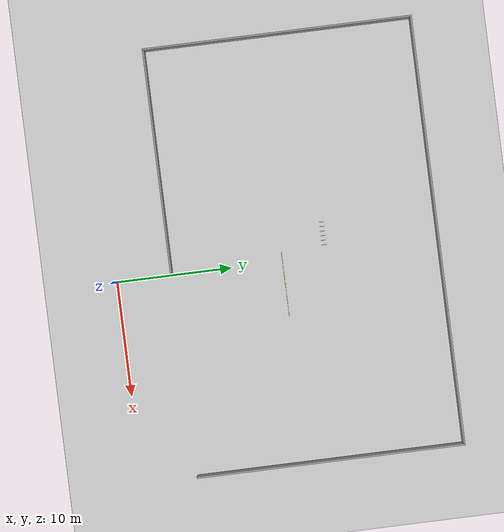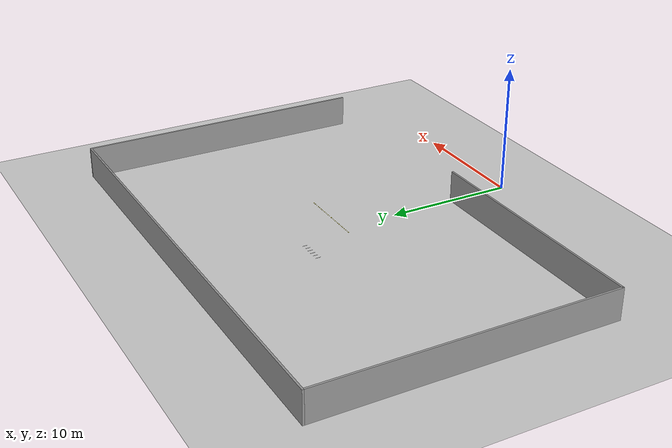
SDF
<sdf version="1.6">
 <world name="default">
  <model name="ground_plane">
   <static>1</static>
   <link name="link">
    <collision name="collision">
     <geometry><plane><normal>0 0 1</normal><size>100 100</size></plane></geometry>
     <surface><friction><ode><mu>100</mu><mu2>50</mu2></ode></friction></surface>
    </collision>
    <visual name="visual">
     <cast_shadows>0</cast_shadows>
     <geometry><plane><normal>0 0 1</normal><size>100 100</size></plane></geometry>
     <material>
      <script><uri>file://media/materials/scripts/gazebo.material</uri><name>Gazebo/Grey</name></script>
     </material>
    </visual>
   </link>
  </model>
  <model name="dashedLine560cm_9">
   <link name="link_1">
    <inertial>
     <mass>1</mass>
     <inertia>
      <ixx>0.166667</ixx>
      <ixy>0</ixy>
      <ixz>0</ixz>
      <iyy>0.166667</iyy>
      <iyz>0</iyz>
      <izz>0.166667</izz>
     </inertia>
    </inertial>
    <visual name="visual">
     <pose>2.75 0 0 0 -0 0</pose>
     <geometry><box><size>0.1 0.05 0.001</size></box></geometry>
     <material>
      <lighting>1</lighting>
      <script><uri>file://media/materials/scripts/gazebo.material</uri><name>Gazebo/Yellow</name></script>
     </material>
    </visual>
    <visual name="ModelPreview_2::link_1::visual_1">
     <pose>2.6 0 0 0 -0 0</pose>
     <geometry><box><size>0.1 0.05 0.001</size></box></geometry>
     <material>
      <lighting>1</lighting>
      <script><uri>file://media/materials/scripts/gazebo.material</uri><name>Gazebo/Yellow</name></script>
     </material>
    </visual>
    <visual name="ModelPreview_2::link_1::visual_2">
     <pose>2.45 0 0 0 -0 0</pose>
     <geometry><box><size>0.1 0.05 0.001</size></box></geometry>
     <material>
      <lighting>1</lighting>
      <script><uri>file://media/materials/scripts/gazebo.material</uri><name>Gazebo/Yellow</name></script>
     </material>
    </visual>
    <visual name="ModelPreview_2::link_1::visual_3">
     <pose>2.25 0 0 0 -0 0</pose>
     <geometry><box><size>0.1 0.05 0.001</size></box></geometry>
     <material>
      <lighting>1</lighting>
      <script><uri>file://media/materials/scripts/gazebo.material</uri><name>Gazebo/Yellow</name></script>
     </material>
    </visual>
    <visual name="ModelPreview_2::link_1::visual_4">
     <pose>2.05 0 0 0 -0 0</pose>
     <geometry><box><size>0.1 0.05 0.001</size></box></geometry>
     <material>
      <lighting>1</lighting>
      <script><uri>file://media/materials/scripts/gazebo.material</uri><name>Gazebo/Yellow</name></script>
     </material>
    </visual>
    <visual name="ModelPreview_2::link_1::visual_5">
     <pose>1.85 0 0 0 -0 0</pose>
     <geometry><box><size>0.1 0.05 0.001</size></box></geometry>
     <material>
      <lighting>1</lighting>
      <script><uri>file://media/materials/scripts/gazebo.material</uri><name>Gazebo/Yellow</name></script>
     </material>
    </visual>
    <visual name="ModelPreview_2::link_1::visual_6">
     <pose>1.65 0 0 0 -0 0</pose>
     <geometry><box><size>0.1 0.05 0.001</size></box></geometry>
     <material>
      <lighting>1</lighting>
      <script><uri>file://media/materials/scripts/gazebo.material</uri><name>Gazebo/Yellow</name></script>
     </material>
    </visual>
    <visual name="ModelPreview_2::link_1::visual_7">
     <pose>1.45 0 0 0 -0 0</pose>
     <geometry><box><size>0.1 0.05 0.001</size></box></geometry>
     <material>
      <lighting>1</lighting>
      <script><uri>file://media/materials/scripts/gazebo.material</uri><name>Gazebo/Yellow</name></script>
     </material>
    </visual>
    <visual name="ModelPreview_2::link_1::visual_8">
     <pose>1.25 0 0 0 -0 0</pose>
     <geometry><box><size>0.1 0.05 0.001</size></box></geometry>
     <material>
      <lighting>1</lighting>
      <script><uri>file://media/materials/scripts/gazebo.material</uri><name>Gazebo/Yellow</name></script>
     </material>
    </visual>
    <visual name="ModelPreview_2::link_1::visual_9">
     <pose>1.05 0 0 0 -0 0</pose>
     <geometry><box><size>0.1 0.05 0.001</size></box></geometry>
     <material>
      <lighting>1</lighting>
      <script><uri>file://media/materials/scripts/gazebo.material</uri><name>Gazebo/Yellow</name></script>
     </material>
    </visual>
    <visual name="ModelPreview_2::link_1::visual_10">
     <pose>0.85 0 0 0 -0 0</pose>
     <geometry><box><size>0.1 0.05 0.001</size></box></geometry>
     <material>
      <lighting>1</lighting>
      <script><uri>file://media/materials/scripts/gazebo.material</uri><name>Gazebo/Yellow</name></script>
     </material>
    </visual>
    <visual name="ModelPreview_2::link_1::visual_11">
     <pose>0.65 0 0 0 -0 0</pose>
     <geometry><box><size>0.1 0.05 0.001</size></box></geometry>
     <material>
      <lighting>1</lighting>
      <script><uri>file://media/materials/scripts/gazebo.material</uri><name>Gazebo/Yellow</name></script>
     </material>
    </visual>
    <visual name="ModelPreview_2::link_1::visual_12">
     <pose>0.45 0 0 0 -0 0</pose>
     <geometry><box><size>0.1 0.05 0.001</size></box></geometry>
     <material>
      <lighting>1</lighting>
      <script><uri>file://media/materials/scripts/gazebo.material</uri><name>Gazebo/Yellow</name></script>
     </material>
    </visual>
    <visual name="ModelPreview_2::link_1::visual_13">
     <pose>0.25 0 0 0 -0 0</pose>
     <geometry><box><size>0.1 0.05 0.001</size></box></geometry>
     <material>
      <lighting>1</lighting>
      <script><uri>file://media/materials/scripts/gazebo.material</uri><name>Gazebo/Yellow</name></script>
     </material>
    </visual>
    <visual name="ModelPreview_2::link_1::visual_14">
     <pose>-0.05 0 0 0 -0 0</pose>
     <geometry><box><size>0.1 0.05 0.001</size></box></geometry>
     <material>
      <lighting>1</lighting>
      <script><uri>file://media/materials/scripts/gazebo.material</uri><name>Gazebo/Yellow</name></script>
     </material>
    </visual>
    <visual name="ModelPreview_2::link_1::visual_15">
     <pose>-0.25 0 0 0 -0 0</pose>
     <geometry><box><size>0.1 0.05 0.001</size></box></geometry>
     <material>
      <lighting>1</lighting>
      <script><uri>file://media/materials/scripts/gazebo.material</uri><name>Gazebo/Yellow</name></script>
     </material>
    </visual>
    <visual name="ModelPreview_2::link_1::visual_16">
     <pose>-0.45 0 0 0 -0 0</pose>
     <geometry><box><size>0.1 0.05 0.001</size></box></geometry>
     <material>
      <lighting>1</lighting>
      <script><uri>file://media/materials/scripts/gazebo.material</uri><name>Gazebo/Yellow</name></script>
     </material>
    </visual>
    <visual name="ModelPreview_2::link_1::visual_17">
     <pose>-0.65 0 0 0 -0 0</pose>
     <geometry><box><size>0.1 0.05 0.001</size></box></geometry>
     <material>
      <lighting>1</lighting>
      <script><uri>file://media/materials/scripts/gazebo.material</uri><name>Gazebo/Yellow</name></script>
     </material>
    </visual>
    <visual name="ModelPreview_2::link_1::visual_18">
     <pose>-0.85 0 0 0 -0 0</pose>
     <geometry><box><size>0.1 0.05 0.001</size></box></geometry>
     <material>
      <lighting>1</lighting>
      <script><uri>file://media/materials/scripts/gazebo.material</uri><name>Gazebo/Yellow</name></script>
     </material>
    </visual>
    <visual name="ModelPreview_2::link_1::visual_19">
     <pose>-1.05 0 0 0 -0 0</pose>
     <geometry><box><size>0.1 0.05 0.001</size></box></geometry>
     <material>
      <lighting>1</lighting>
      <script><uri>file://media/materials/scripts/gazebo.material</uri><name>Gazebo/Yellow</name></script>
     </material>
    </visual>
    <visual name="ModelPreview_2::link_1::visual_20">
     <pose>-1.25 0 0 0 -0 0</pose>
     <geometry><box><size>0.1 0.05 0.001</size></box></geometry>
     <material>
      <lighting>1</lighting>
      <script><uri>file://media/materials/scripts/gazebo.material</uri><name>Gazebo/Yellow</name></script>
     </material>
    </visual>
    <visual name="ModelPreview_2::link_1::visual_21">
     <pose>-1.45 0 0 0 -0 0</pose>
     <geometry><box><size>0.1 0.05 0.001</size></box></geometry>
     <material>
      <lighting>1</lighting>
      <script><uri>file://media/materials/scripts/gazebo.material</uri><name>Gazebo/Yellow</name></script>
     </material>
    </visual>
    <visual name="ModelPreview_2::link_1::visual_22">
     <pose>-1.65 0 0 0 -0 0</pose>
     <geometry><box><size>0.1 0.05 0.001</size></box></geometry>
     <material>
      <lighting>1</lighting>
      <script><uri>file://media/materials/scripts/gazebo.material</uri><name>Gazebo/Yellow</name></script>
     </material>
    </visual>
    <visual name="ModelPreview_2::link_1::visual_23">
     <pose>-1.85 0 0 0 -0 0</pose>
     <geometry><box><size>0.1 0.05 0.001</size></box></geometry>
     <material>
      <lighting>1</lighting>
      <script><uri>file://media/materials/scripts/gazebo.material</uri><name>Gazebo/Yellow</name></script>
     </material>
    </visual>
    <visual name="ModelPreview_2::link_1::visual_24">
     <pose>-2.05 0 0 0 -0 0</pose>
     <geometry><box><size>0.1 0.05 0.001</size></box></geometry>
     <material>
      <lighting>1</lighting>
      <script><uri>file://media/materials/scripts/gazebo.material</uri><name>Gazebo/Yellow</name></script>
     </material>
    </visual>
    <visual name="ModelPreview_2::link_1::visual_25">
     <pose>-2.25 0 0 0 -0 0</pose>
     <geometry><box><size>0.1 0.05 0.001</size></box></geometry>
     <material>
      <lighting>1</lighting>
      <script><uri>file://media/materials/scripts/gazebo.material</uri><name>Gazebo/Yellow</name></script>
     </material>
    </visual>
    <visual name="ModelPreview_2::link_1::visual_26">
     <pose>-2.45 0 0 0 -0 0</pose>
     <geometry><box><size>0.1 0.05 0.001</size></box></geometry>
     <material>
      <lighting>1</lighting>
      <script><uri>file://media/materials/scripts/gazebo.material</uri><name>Gazebo/Yellow</name></script>
     </material>
    </visual>
    <visual name="ModelPreview_2::link_1::visual_27">
     <pose>-2.6 0 0 0 -0 0</pose>
     <geometry><box><size>0.1 0.05 0.001</size></box></geometry>
     <material>
      <lighting>1</lighting>
      <script><uri>file://media/materials/scripts/gazebo.material</uri><name>Gazebo/Yellow</name></script>
     </material>
    </visual>
    <visual name="ModelPreview_2::link_1::visual_28">
     <pose>-2.75 0 0 0 -0 0</pose>
     <geometry><box><size>0.1 0.05 0.001</size></box></geometry>
     <material>
      <lighting>1</lighting>
      <script><uri>file://media/materials/scripts/gazebo.material</uri><name>Gazebo/Yellow</name></script>
     </material>
    </visual>
    <visual name="ModelPreview_2::link_1::visual_29">
     <pose>0.05 0 0 0 -0 0</pose>
     <geometry><box><size>0.1 0.05 0.001</size></box></geometry>
     <material>
      <lighting>1</lighting>
      <script><uri>file://media/materials/scripts/gazebo.material</uri><name>Gazebo/Yellow</name></script>
     </material>
    </visual>
    <collision name="collision"><geometry><box><size>0.1 0.05 1e-05</size></box></geometry></collision>
   </link>
   <static>1</static>
   <pose>2 14.425 0 0 -0 0</pose>
  </model>
  <model name="zebra_crossing_40cmx200cm_4">
   <link name="link_2">
    <inertial>
     <mass>1</mass>
     <inertia>
      <ixx>0.166667</ixx>
      <ixy>0</ixy>
      <ixz>0</ixz>
      <iyy>0.166667</iyy>
      <iyz>0</iyz>
      <izz>0.166667</izz>
     </inertia>
    </inertial>
    <visual name="ModelPreview_5::link_2::visual_1">
     <pose>-0.2 0 0 0 -0 0</pose>
     <geometry><box><size>0.05 0.4 0.001</size></box></geometry>
     <material>
      <lighting>1</lighting>
      <script><uri>file://media/materials/scripts/gazebo.material</uri><name>Gazebo/White</name></script>
     </material>
    </visual>
    <visual name="ModelPreview_5::link_2::visual_3">
     <pose>-0.6 0 0 0 -0 0</pose>
     <geometry><box><size>0.05 0.4 0.001</size></box></geometry>
     <material>
      <lighting>1</lighting>
      <script><uri>file://media/materials/scripts/gazebo.material</uri><name>Gazebo/White</name></script>
     </material>
    </visual>
    <visual name="ModelPreview_5::link_2::visual_4">
     <pose>1 0 0 0 -0 0</pose>
     <geometry><box><size>0.05 0.4 0.001</size></box></geometry>
     <material>
      <lighting>1</lighting>
      <script><uri>file://media/materials/scripts/gazebo.material</uri><name>Gazebo/White</name></script>
     </material>
    </visual>
    <visual name="visual">
     <pose>0.2 0 0 0 -0 0</pose>
     <geometry><box><size>0.05 0.4 0.001</size></box></geometry>
     <material>
      <lighting>1</lighting>
      <script><uri>file://media/materials/scripts/gazebo.material</uri><name>Gazebo/White</name></script>
     </material>
    </visual>
    <visual name="ModelPreview_5::link_2::visual_5">
     <pose>-1 0 0 0 -0 0</pose>
     <geometry><box><size>0.05 0.4 0.001</size></box></geometry>
     <material>
      <lighting>1</lighting>
      <script><uri>file://media/materials/scripts/gazebo.material</uri><name>Gazebo/White</name></script>
     </material>
    </visual>
    <visual name="ModelPreview_5::link_2::visual_2">
     <pose>0.6 0 0 0 -0 0</pose>
     <geometry><box><size>0.05 0.4 0.001</size></box></geometry>
     <material>
      <lighting>1</lighting>
      <script><uri>file://media/materials/scripts/gazebo.material</uri><name>Gazebo/White</name></script>
     </material>
    </visual>
    <collision name="collision_5">
     <pose>-1 0 0 0 -0 0</pose>
     <geometry><box><size>0.05 0.4 1e-05</size></box></geometry>
    </collision>
    <collision name="collision">
     <pose>0.2 0 0 0 -0 0</pose>
     <geometry><box><size>0.05 0.4 1e-05</size></box></geometry>
    </collision>
    <collision name="collision_3">
     <pose>-0.6 0 0 0 -0 0</pose>
     <geometry><box><size>0.05 0.4 1e-05</size></box></geometry>
    </collision>
    <collision name="collision_4">
     <pose>1 0 0 0 -0 0</pose>
     <geometry><box><size>0.05 0.4 1e-05</size></box></geometry>
    </collision>
    <collision name="collision_2">
     <pose>0.6 0 0 0 -0 0</pose>
     <geometry><box><size>0.05 0.4 1e-05</size></box></geometry>
    </collision>
    <collision name="collision_1">
     <pose>-0.2 0 0 0 -0 0</pose>
     <geometry><box><size>0.05 0.4 1e-05</size></box></geometry>
    </collision>
   </link>
   <static>1</static>
   <pose>-2 18.2 0 0 -0 0</pose>
  </model>
  <model name="factoryWall2">
   <pose>-1.04 16.4 0 0 -0 0</pose>
   <link name="Wall_12">
    <collision name="Wall_12_Collision">
     <geometry><box><size>23.25 0.15 2.5</size></box></geometry>
     <pose>0 0 1.25 0 -0 0</pose>
    </collision>
    <visual name="Wall_12_Visual">
     <pose>0 0 1.25 0 -0 0</pose>
     <geometry><box><size>23.25 0.15 2.5</size></box></geometry>
     <material>
      <script><uri>file://media/materials/scripts/gazebo.material</uri><name>Gazebo/Grey</name></script>
      <ambient>1 1 1 1</ambient>
     </material>
     <meta><layer>0</layer></meta>
    </visual>
    <pose>18.56 0.050001 0 0 -0 -1.5708</pose>
   </link>
   <link name="Wall_14">
    <collision name="Wall_14_Collision">
     <geometry><box><size>23.35 0.15 2.5</size></box></geometry>
     <pose>0 0 1.25 0 -0 0</pose>
    </collision>
    <visual name="Wall_14_Visual">
     <pose>0 0 1.25 0 -0 0</pose>
     <geometry><box><size>23.35 0.15 2.5</size></box></geometry>
     <material>
      <script><uri>file://media/materials/scripts/gazebo.material</uri><name>Gazebo/Grey</name></script>
      <ambient>1 1 1 1</ambient>
     </material>
     <meta><layer>0</layer></meta>
    </visual>
    <pose>-18.56 0 0 0 -0 -1.5708</pose>
   </link>
   <link name="Wall_16">
    <collision name="Wall_16_Collision">
     <geometry><box><size>19.75 0.15 2.5</size></box></geometry>
     <pose>0 0 1.25 0 -0 0</pose>
    </collision>
    <visual name="Wall_16_Visual">
     <pose>0 0 1.25 0 -0 0</pose>
     <geometry><box><size>19.75 0.15 2.5</size></box></geometry>
     <material>
      <script><uri>file://media/materials/scripts/gazebo.material</uri><name>Gazebo/Grey</name></script>
      <ambient>1 1 1 1</ambient>
     </material>
     <meta><layer>0</layer></meta>
    </visual>
    <pose>-8.76 -11.6 0 0 -0 0</pose>
   </link>
   <link name="Wall_8">
    <collision name="Wall_8_Collision">
     <geometry><box><size>37.27 0.15 2.5</size></box></geometry>
     <pose>0 0 1.25 0 -0 0</pose>
    </collision>
    <visual name="Wall_8_Visual">
     <pose>0 0 1.25 0 -0 0</pose>
     <geometry><box><size>37.27 0.15 2.5</size></box></geometry>
     <material>
      <script><uri>file://media/materials/scripts/gazebo.material</uri><name>Gazebo/Grey</name></script>
      <ambient>1 1 1 1</ambient>
     </material>
     <meta><layer>0</layer></meta>
    </visual>
    <pose>0 11.6 0 0 -0 3.14159</pose>
   </link>
   <static>1</static>
  </model>
 </world>
</sdf>
